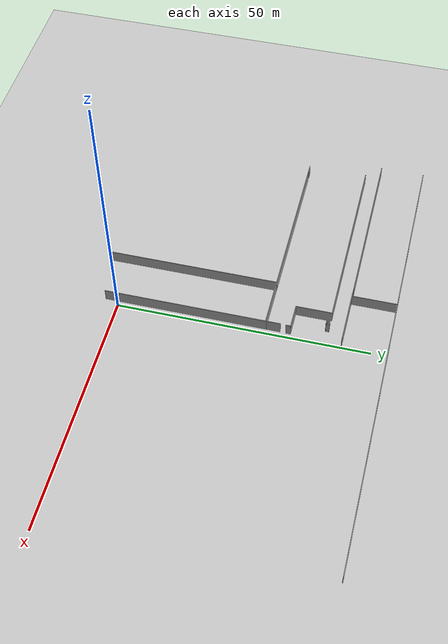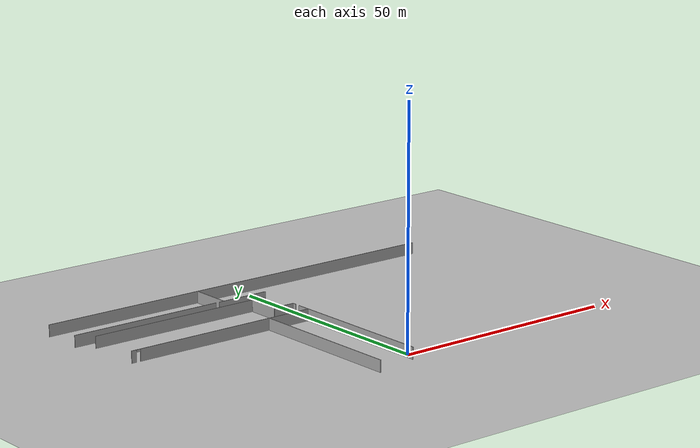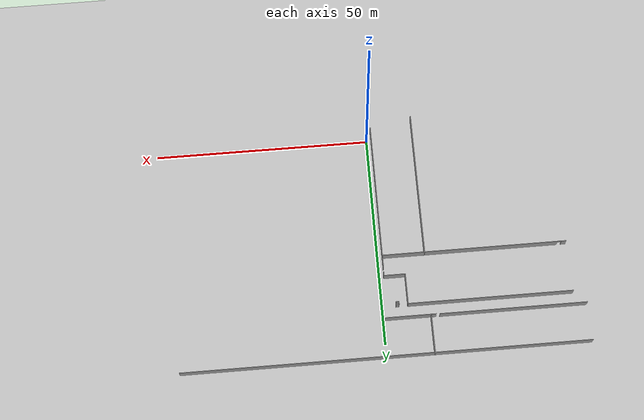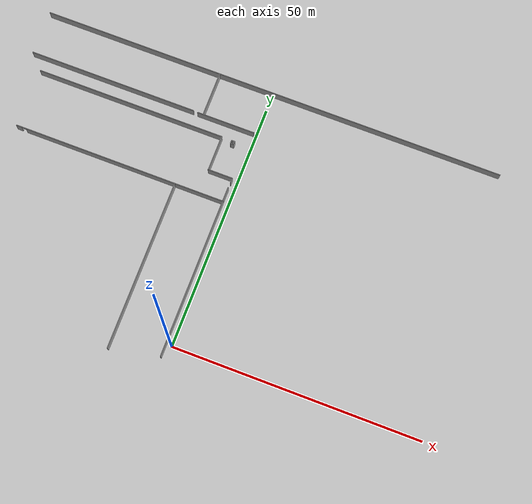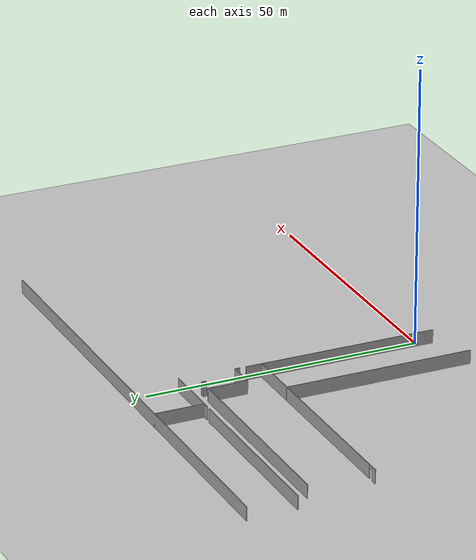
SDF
<sdf version="1.6">
 <world name="default">
  <model name="ground_plane">
   <static>1</static>
   <link name="link">
    <collision name="collision">
     <geometry><plane><normal>0 0 1</normal><size>300 300</size></plane></geometry>
     <surface>
      <contact><collide_bitmask>65535</collide_bitmask></contact>
      <friction><ode><mu>100</mu><mu2>50</mu2></ode></friction>
     </surface>
    </collision>
    <visual name="visual">
     <cast_shadows>0</cast_shadows>
     <geometry><plane><normal>0 0 1</normal><size>300 300</size></plane></geometry>
     <material>
      <script><uri>file://media/materials/scripts/gazebo.material</uri><name>Gazebo/Grey</name></script>
     </material>
    </visual>
   </link>
  </model>
  <model name="NIK">
   <pose>-0.005548 -3.7937 0 0 -0 0</pose>
   <link name="Wall_484">
    <collision name="Wall_484_Collision">
     <geometry><box><size>0.75 0.15 2.5</size></box></geometry>
     <pose>0 0 1.25 0 -0 0</pose>
    </collision>
    <visual name="Wall_484_Visual">
     <pose>0 0 1.25 0 -0 0</pose>
     <geometry><box><size>0.75 0.15 2.5</size></box></geometry>
     <material>
      <script><uri>file://media/materials/scripts/gazebo.material</uri><name>Gazebo/Grey</name></script>
      <ambient>1 1 1 1</ambient>
     </material>
     <meta><layer>0</layer></meta>
    </visual>
    <pose>-3.89153 44.7626 0 0 -0 -1.5708</pose>
   </link>
   <link name="Wall_485">
    <collision name="Wall_485_Collision">
     <geometry><box><size>0.75 0.15 2.5</size></box></geometry>
     <pose>0 0 1.25 0 -0 0</pose>
    </collision>
    <visual name="Wall_485_Visual">
     <pose>0 0 1.25 0 -0 0</pose>
     <geometry><box><size>0.75 0.15 2.5</size></box></geometry>
     <material>
      <script><uri>file://media/materials/scripts/gazebo.material</uri><name>Gazebo/Grey</name></script>
      <ambient>1 1 1 1</ambient>
     </material>
     <meta><layer>0</layer></meta>
    </visual>
    <pose>-3.59153 44.4626 0 0 -0 0</pose>
   </link>
   <link name="Wall_486">
    <collision name="Wall_486_Collision">
     <geometry><box><size>0.75 0.15 2.5</size></box></geometry>
     <pose>0 0 1.25 0 -0 0</pose>
    </collision>
    <visual name="Wall_486_Visual">
     <pose>0 0 1.25 0 -0 0</pose>
     <geometry><box><size>0.75 0.15 2.5</size></box></geometry>
     <material>
      <script><uri>file://media/materials/scripts/gazebo.material</uri><name>Gazebo/Grey</name></script>
      <ambient>1 1 1 1</ambient>
     </material>
     <meta><layer>0</layer></meta>
    </visual>
    <pose>-3.29153 44.7626 0 0 -0 1.5708</pose>
   </link>
   <link name="Wall_487">
    <collision name="Wall_487_Collision">
     <geometry><box><size>0.75 0.15 2.5</size></box></geometry>
     <pose>0 0 1.25 0 -0 0</pose>
    </collision>
    <visual name="Wall_487_Visual">
     <pose>0 0 1.25 0 -0 0</pose>
     <geometry><box><size>0.75 0.15 2.5</size></box></geometry>
     <material>
      <script><uri>file://media/materials/scripts/gazebo.material</uri><name>Gazebo/Grey</name></script>
      <ambient>1 1 1 1</ambient>
     </material>
     <meta><layer>0</layer></meta>
    </visual>
    <pose>-3.59153 45.0626 0 0 -0 3.14159</pose>
   </link>
   <link name="Wall_553">
    <collision name="Wall_553_Collision">
     <geometry><box><size>1 0.15 2.5</size></box></geometry>
     <pose>0 0 1.25 0 -0 0</pose>
    </collision>
    <visual name="Wall_553_Visual">
     <pose>0 0 1.25 0 -0 0</pose>
     <geometry><box><size>1 0.15 2.5</size></box></geometry>
     <material>
      <script><uri>file://media/materials/scripts/gazebo.material</uri><name>Gazebo/Grey</name></script>
      <ambient>1 1 1 1</ambient>
     </material>
     <meta><layer>0</layer></meta>
    </visual>
    <pose>-1.06984 37.5815 0 0 -0 -1.5708</pose>
   </link>
   <link name="Wall_555">
    <collision name="Wall_555_Collision">
     <geometry><box><size>3 0.15 2.5</size></box></geometry>
     <pose>0 0 1.25 0 -0 0</pose>
    </collision>
    <visual name="Wall_555_Visual">
     <pose>0 0 1.25 0 -0 0</pose>
     <geometry><box><size>3 0.15 2.5</size></box></geometry>
     <material>
      <script><uri>file://media/materials/scripts/gazebo.material</uri><name>Gazebo/Grey</name></script>
      <ambient>1 1 1 1</ambient>
     </material>
     <meta><layer>0</layer></meta>
    </visual>
    <pose>-1.11976 34.5315 0 0 -0 1.5708</pose>
   </link>
   <link name="Wall_567">
    <collision name="Wall_567_Collision">
     <geometry><box><size>32.25 0.15 2.5</size></box></geometry>
     <pose>0 0 1.25 0 -0 0</pose>
    </collision>
    <visual name="Wall_567_Visual">
     <pose>0 0 1.25 0 -0 0</pose>
     <geometry><box><size>32.25 0.15 2.5</size></box></geometry>
     <material>
      <script><uri>file://media/materials/scripts/gazebo.material</uri><name>Gazebo/Grey</name></script>
      <ambient>1 1 1 1</ambient>
     </material>
     <meta><layer>0</layer></meta>
    </visual>
    <pose>-1.11526 17.1418 0 0 -0 1.5708</pose>
   </link>
   <link name="Wall_573">
    <collision name="Wall_573_Collision">
     <geometry><box><size>11.75 0.15 2.5</size></box></geometry>
     <pose>0 0 1.25 0 -0 0</pose>
    </collision>
    <visual name="Wall_573_Visual">
     <pose>0 0 1.25 0 -0 0</pose>
     <geometry><box><size>11.75 0.15 2.5</size></box></geometry>
     <material>
      <script><uri>file://media/materials/scripts/gazebo.material</uri><name>Gazebo/Grey</name></script>
      <ambient>1 1 1 1</ambient>
     </material>
     <meta><layer>0</layer></meta>
    </visual>
    <pose>-6.27944 48.0508 0 0 -0 3.14159</pose>
   </link>
   <link name="Wall_575">
    <collision name="Wall_575_Collision">
     <geometry><box><size>34 0.15 2.5</size></box></geometry>
     <pose>0 0 1.25 0 -0 0</pose>
    </collision>
    <visual name="Wall_575_Visual">
     <pose>0 0 1.25 0 -0 0</pose>
     <geometry><box><size>34 0.15 2.5</size></box></geometry>
     <material>
      <script><uri>file://media/materials/scripts/gazebo.material</uri><name>Gazebo/Grey</name></script>
      <ambient>1 1 1 1</ambient>
     </material>
     <meta><layer>0</layer></meta>
    </visual>
    <pose>-29.9724 48.0942 0 0 -0 3.14159</pose>
   </link>
   <link name="Wall_60">
    <collision name="Wall_60_Collision">
     <geometry><box><size>9 0.15 2.5</size></box></geometry>
     <pose>0 0 1.25 0 -0 0</pose>
    </collision>
    <visual name="Wall_60_Visual">
     <pose>0 0 1.25 0 -0 0</pose>
     <geometry><box><size>9 0.15 2.5</size></box></geometry>
     <material>
      <script><uri>file://media/materials/scripts/gazebo.material</uri><name>Gazebo/Grey</name></script>
      <ambient>1 1 1 1</ambient>
     </material>
     <meta><layer>0</layer></meta>
    </visual>
    <pose>-10.9888 52.5538 0 0 -0 1.5708</pose>
   </link>
   <link name="Wall_77">
    <pose>-22.5448 33.1065 0 0 -0 0</pose>
    <visual name="Wall_77_Visual_0">
     <pose>-20.9306 0 1.25 0 -0 0</pose>
     <geometry><box><size>1.13889 0.15 2.5</size></box></geometry>
     <material>
      <script><uri>file://media/materials/scripts/gazebo.material</uri><name>Gazebo/Grey</name></script>
      <ambient>1 1 1 1</ambient>
     </material>
     <meta><layer>0</layer></meta>
    </visual>
    <collision name="Wall_77_Collision_0">
     <geometry><box><size>1.13889 0.15 2.5</size></box></geometry>
     <pose>-20.9306 0 1.25 0 -0 0</pose>
    </collision>
    <visual name="Wall_77_Visual_1">
     <pose>1.01944 0 1.25 0 -0 0</pose>
     <geometry><box><size>40.9611 0.15 2.5</size></box></geometry>
     <material>
      <script><uri>file://media/materials/scripts/gazebo.material</uri><name>Gazebo/Grey</name></script>
      <ambient>1 1 1 1</ambient>
     </material>
     <meta><layer>0</layer></meta>
    </visual>
    <collision name="Wall_77_Collision_1">
     <geometry><box><size>40.9611 0.15 2.5</size></box></geometry>
     <pose>1.01944 0 1.25 0 -0 0</pose>
    </collision>
    <visual name="Wall_77_Visual_2">
     <pose>-19.9111 0 2.25 0 -0 0</pose>
     <geometry><box><size>0.9 0.15 0.5</size></box></geometry>
     <material>
      <script><uri>file://media/materials/scripts/gazebo.material</uri><name>Gazebo/Grey</name></script>
      <ambient>1 1 1 1</ambient>
     </material>
     <meta><layer>0</layer></meta>
    </visual>
    <collision name="Wall_77_Collision_2">
     <geometry><box><size>0.9 0.15 0.5</size></box></geometry>
     <pose>-19.9111 0 2.25 0 -0 0</pose>
    </collision>
   </link>
   <link name="Wall_85">
    <collision name="Wall_85_Collision">
     <geometry><box><size>38.25 0.15 2.5</size></box></geometry>
     <pose>0 0 1.25 0 -0 0</pose>
    </collision>
    <visual name="Wall_85_Visual">
     <pose>0 0 1.25 0 -0 0</pose>
     <geometry><box><size>38.25 0.15 2.5</size></box></geometry>
     <material>
      <script><uri>file://media/materials/scripts/gazebo.material</uri><name>Gazebo/Grey</name></script>
      <ambient>1 1 1 1</ambient>
     </material>
     <meta><layer>0</layer></meta>
    </visual>
    <pose>-25.0198 45.1065 0 0 -0 0</pose>
   </link>
   <link name="Wall_86">
    <collision name="Wall_86_Collision">
     <geometry><box><size>7.25 0.15 2.5</size></box></geometry>
     <pose>0 0 1.25 0 -0 0</pose>
    </collision>
    <visual name="Wall_86_Visual">
     <pose>0 0 1.25 0 -0 0</pose>
     <geometry><box><size>7.25 0.15 2.5</size></box></geometry>
     <material>
      <script><uri>file://media/materials/scripts/gazebo.material</uri><name>Gazebo/Grey</name></script>
      <ambient>1 1 1 1</ambient>
     </material>
     <meta><layer>0</layer></meta>
    </visual>
    <pose>-5.96976 41.5565 0 0 -0 -1.5708</pose>
   </link>
   <link name="Wall_87">
    <collision name="Wall_87_Collision">
     <geometry><box><size>5.04992 0.15 2.5</size></box></geometry>
     <pose>0 0 1.25 0 -0 0</pose>
    </collision>
    <visual name="Wall_87_Visual">
     <pose>0 0 1.25 0 -0 0</pose>
     <geometry><box><size>5.04992 0.15 2.5</size></box></geometry>
     <material>
      <script><uri>file://media/materials/scripts/gazebo.material</uri><name>Gazebo/Grey</name></script>
      <ambient>1 1 1 1</ambient>
     </material>
     <meta><layer>0</layer></meta>
    </visual>
    <pose>-3.5198 38.0065 0 0 -0 0</pose>
   </link>
   <link name="Wall_9">
    <collision name="Wall_9_Collision">
     <geometry><box><size>94 0.15 2.5</size></box></geometry>
     <pose>0 0 1.25 0 -0 0</pose>
    </collision>
    <visual name="Wall_9_Visual">
     <pose>0 0 1.25 0 -0 0</pose>
     <geometry><box><size>94 0.15 2.5</size></box></geometry>
     <material>
      <script><uri>file://media/materials/scripts/gazebo.material</uri><name>Gazebo/Grey</name></script>
      <ambient>1 1 1 1</ambient>
     </material>
     <meta><layer>0</layer></meta>
    </visual>
    <pose>-0.043685 56.9712 0 0 -0 0</pose>
   </link>
   <link name="Wall_92">
    <collision name="Wall_92_Collision">
     <geometry><box><size>34.2676 0.15 2.5</size></box></geometry>
     <pose>0 0 1.25 0 -0 0</pose>
    </collision>
    <visual name="Wall_92_Visual">
     <pose>0 0 1.25 0 -0 0</pose>
     <geometry><box><size>34.2676 0.15 2.5</size></box></geometry>
     <material>
      <script><uri>file://media/materials/scripts/gazebo.material</uri><name>Gazebo/Grey</name></script>
      <ambient>1 1 1 1</ambient>
     </material>
     <meta><layer>0</layer></meta>
    </visual>
    <pose>-10.9718 16.0653 0 0 -0 -1.57068</pose>
   </link>
   <static>1</static>
  </model>
 </world>
</sdf>
